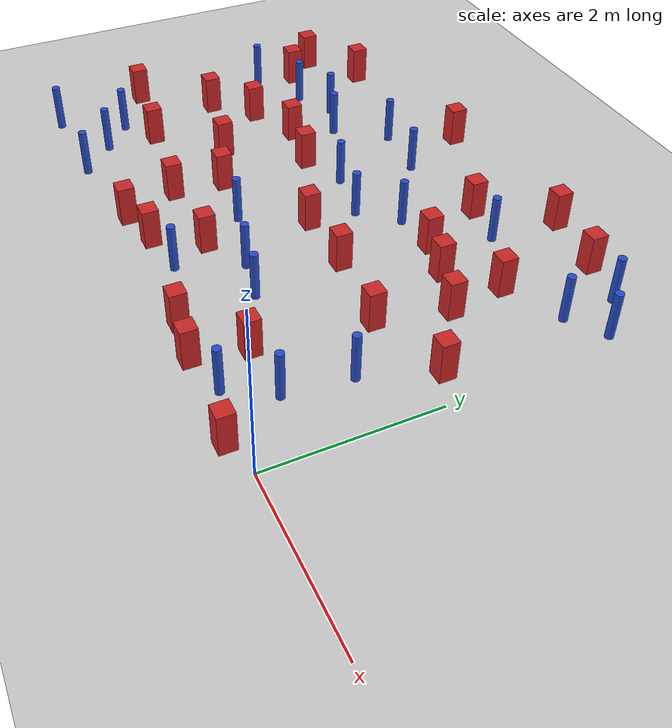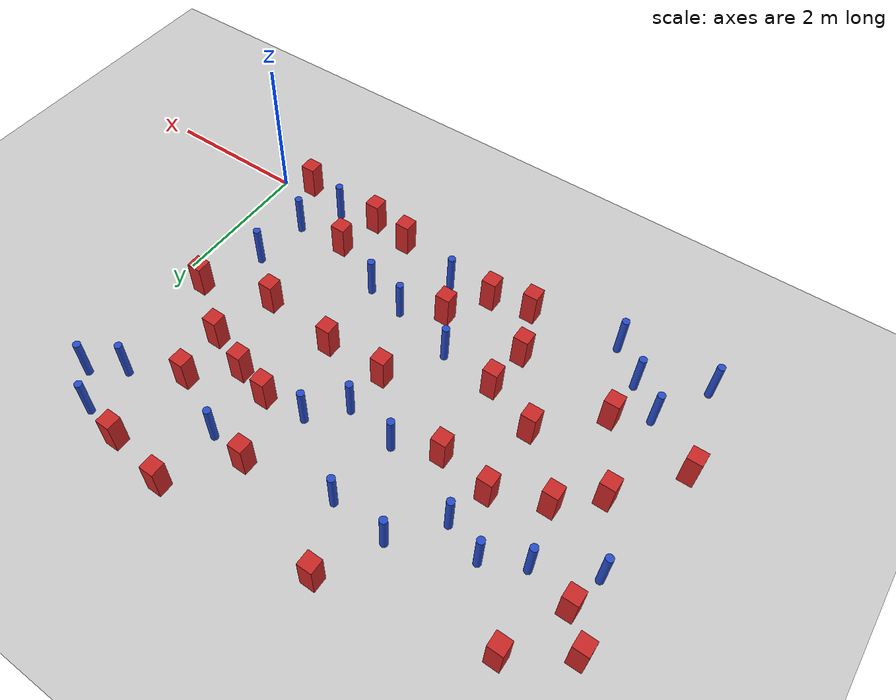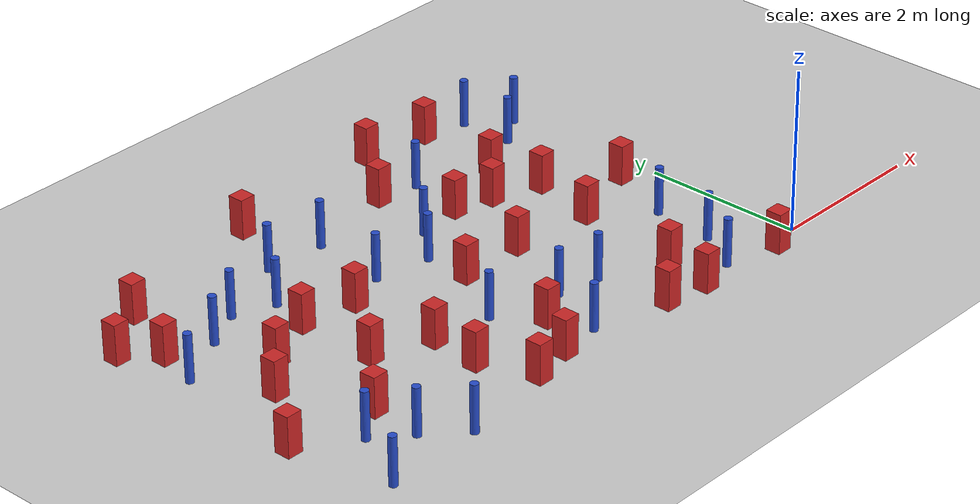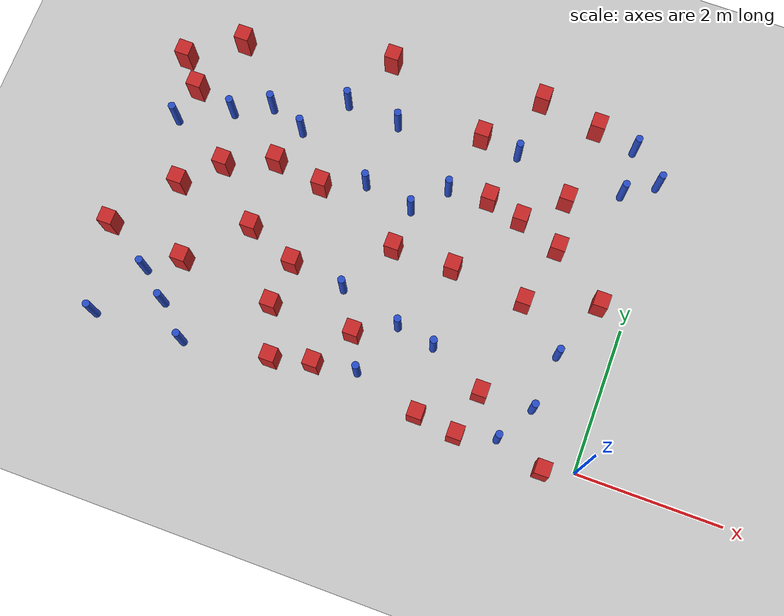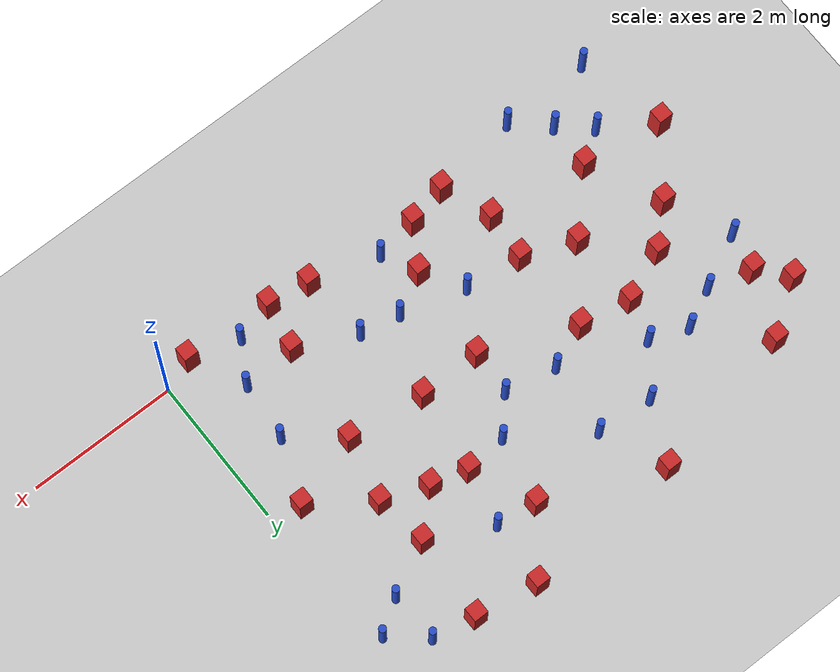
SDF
<sdf version="1.6">
 <world name="default">
  <model name="ground_plane">
   <static>1</static>
   <link name="link">
    <collision name="collision">
     <geometry><plane><normal>0 0 1</normal><size>100 100</size></plane></geometry>
     <surface><friction><ode><mu>100</mu><mu2>50</mu2></ode></friction></surface>
    </collision>
    <visual name="visual">
     <cast_shadows>0</cast_shadows>
     <geometry><plane><normal>0 0 1</normal><size>100 100</size></plane></geometry>
     <material>
      <ambient>1.0 1.0 1.0 1.0</ambient>
      <diffuse>0.8 0.8 0.8 1.0</diffuse>
      <specular>0.01 0.01 0.01 1.000000</specular>
     </material>
    </visual>
   </link>
  </model>
  <model name="square_post_obstacle1">
   <static>true</static>
   <pose>-4.15054993788 4.54803701752 -4.36207812815e-07 3.75137919937e-06 9.77721102514e-07 2.47381364184e-05</pose>
   <link name="link">
    <pose>0 0 0.25 0 -0 0</pose>
    <inertial>
     <mass>100</mass>
     <inertia>
      <ixx>0.166667</ixx>
      <ixy>0</ixy>
      <ixz>0</ixz>
      <iyy>0.166667</iyy>
      <iyz>0</iyz>
      <izz>0.166667</izz>
     </inertia>
    </inertial>
    <collision name="collision"><geometry><box><size>.2 .2 .5</size></box></geometry></collision>
    <visual name="visual">
     <geometry><box><size>.2 .2 .5</size></box></geometry>
     <material>
      <script><name>Gazebo/Red</name><uri>file://media/materials/scripts/gazebo.material</uri></script>
     </material>
    </visual>
   </link>
  </model>
  <model name="square_post_obstacle2">
   <static>true</static>
   <pose>-2.61837947253 3.90942713527 -4.36207812815e-07 3.75137919937e-06 9.77721102514e-07 2.47381364184e-05</pose>
   <link name="link">
    <pose>0 0 0.25 0 -0 0</pose>
    <inertial>
     <mass>100</mass>
     <inertia>
      <ixx>0.166667</ixx>
      <ixy>0</ixy>
      <ixz>0</ixz>
      <iyy>0.166667</iyy>
      <iyz>0</iyz>
      <izz>0.166667</izz>
     </inertia>
    </inertial>
    <collision name="collision"><geometry><box><size>.2 .2 .5</size></box></geometry></collision>
    <visual name="visual">
     <geometry><box><size>.2 .2 .5</size></box></geometry>
     <material>
      <script><name>Gazebo/Red</name><uri>file://media/materials/scripts/gazebo.material</uri></script>
     </material>
    </visual>
   </link>
  </model>
  <model name="pole_obstacle9">
   <static>true</static>
   <pose>-2.79973097755 1.02646332881 -3.09024884848e-07 -7.19054271902e-07 -2.11315075202e-07 -1.93935509288e-07</pose>
   <link name="link">
    <pose>0 0 0.3 0 -0 0</pose>
    <inertial>
     <mass>1</mass>
     <inertia><ixx>0.145833</ixx><ixy>0</ixy><ixz>0</ixz><iyy>0.145833</iyy><iyz>0</iyz><izz>0.125</izz></inertia>
    </inertial>
    <collision name="collision">
     <geometry><cylinder><radius>0.05</radius><length>.6</length></cylinder></geometry>
    </collision>
    <visual name="visual">
     <geometry><cylinder><radius>0.05</radius><length>.6</length></cylinder></geometry>
     <material>
      <script><name>Gazebo/Blue</name><uri>file://media/materials/scripts/gazebo.material</uri></script>
     </material>
    </visual>
   </link>
  </model>
  <model name="pole_obstacle11">
   <static>true</static>
   <pose>-4.52643800506 3.75983450144 -3.09024884793e-07 -7.19054271912e-07 -2.11315075144e-07 -1.93935509269e-07</pose>
   <link name="link">
    <pose>0 0 0.3 0 -0 0</pose>
    <inertial>
     <mass>1</mass>
     <inertia><ixx>0.145833</ixx><ixy>0</ixy><ixz>0</ixz><iyy>0.145833</iyy><iyz>0</iyz><izz>0.125</izz></inertia>
    </inertial>
    <collision name="collision">
     <geometry><cylinder><radius>0.05</radius><length>.6</length></cylinder></geometry>
    </collision>
    <visual name="visual">
     <geometry><cylinder><radius>0.05</radius><length>.6</length></cylinder></geometry>
     <material>
      <script><name>Gazebo/Blue</name><uri>file://media/materials/scripts/gazebo.material</uri></script>
     </material>
    </visual>
   </link>
  </model>
  <model name="pole_obstacle16">
   <static>true</static>
   <pose>-0.778239144255 0.585590767316 -3.09024884793e-07 -7.19054271912e-07 -2.11315075137e-07 -1.93935509266e-07</pose>
   <link name="link">
    <pose>0 0 0.3 0 -0 0</pose>
    <inertial>
     <mass>1</mass>
     <inertia><ixx>0.145833</ixx><ixy>0</ixy><ixz>0</ixz><iyy>0.145833</iyy><iyz>0</iyz><izz>0.125</izz></inertia>
    </inertial>
    <collision name="collision">
     <geometry><cylinder><radius>0.05</radius><length>.6</length></cylinder></geometry>
    </collision>
    <visual name="visual">
     <geometry><cylinder><radius>0.05</radius><length>.6</length></cylinder></geometry>
     <material>
      <script><name>Gazebo/Blue</name><uri>file://media/materials/scripts/gazebo.material</uri></script>
     </material>
    </visual>
   </link>
  </model>
  <model name="square_post_obstacle23">
   <static>true</static>
   <pose>-4.41929423397 1.35762161664 -4.36207812815e-07 3.75137919937e-06 9.77721102514e-07 2.47381364184e-05</pose>
   <link name="link">
    <pose>0 0 0.25 0 -0 0</pose>
    <inertial>
     <mass>100</mass>
     <inertia>
      <ixx>0.166667</ixx>
      <ixy>0</ixy>
      <ixz>0</ixz>
      <iyy>0.166667</iyy>
      <iyz>0</iyz>
      <izz>0.166667</izz>
     </inertia>
    </inertial>
    <collision name="collision"><geometry><box><size>.2 .2 .5</size></box></geometry></collision>
    <visual name="visual">
     <geometry><box><size>.2 .2 .5</size></box></geometry>
     <material>
      <script><name>Gazebo/Red</name><uri>file://media/materials/scripts/gazebo.material</uri></script>
     </material>
    </visual>
   </link>
  </model>
  <model name="square_post_obstacle26">
   <static>true</static>
   <pose>-5.80911963832 0.905373672479 -4.36207812815e-07 3.75137919937e-06 9.77721102514e-07 2.47381364184e-05</pose>
   <link name="link">
    <pose>0 0 0.25 0 -0 0</pose>
    <inertial>
     <mass>100</mass>
     <inertia>
      <ixx>0.166667</ixx>
      <ixy>0</ixy>
      <ixz>0</ixz>
      <iyy>0.166667</iyy>
      <iyz>0</iyz>
      <izz>0.166667</izz>
     </inertia>
    </inertial>
    <collision name="collision"><geometry><box><size>.2 .2 .5</size></box></geometry></collision>
    <visual name="visual">
     <geometry><box><size>.2 .2 .5</size></box></geometry>
     <material>
      <script><name>Gazebo/Red</name><uri>file://media/materials/scripts/gazebo.material</uri></script>
     </material>
    </visual>
   </link>
  </model>
  <model name="pole_obstacle19">
   <static>true</static>
   <pose>-3.09244429769 0.270575108553 -3.09024884793e-07 -7.19054271911e-07 -2.11315075163e-07 -1.93935509282e-07</pose>
   <link name="link">
    <pose>0 0 0.3 0 -0 0</pose>
    <inertial>
     <mass>1</mass>
     <inertia><ixx>0.145833</ixx><ixy>0</ixy><ixz>0</ixz><iyy>0.145833</iyy><iyz>0</iyz><izz>0.125</izz></inertia>
    </inertial>
    <collision name="collision">
     <geometry><cylinder><radius>0.05</radius><length>.6</length></cylinder></geometry>
    </collision>
    <visual name="visual">
     <geometry><cylinder><radius>0.05</radius><length>.6</length></cylinder></geometry>
     <material>
      <script><name>Gazebo/Blue</name><uri>file://media/materials/scripts/gazebo.material</uri></script>
     </material>
    </visual>
   </link>
  </model>
  <model name="pole_obstacle33">
   <static>true</static>
   <pose>-5.48912405878 3.35447288335 -3.09024884793e-07 -7.19054271912e-07 -2.11315075144e-07 -1.93935509269e-07</pose>
   <link name="link">
    <pose>0 0 0.3 0 -0 0</pose>
    <inertial>
     <mass>1</mass>
     <inertia><ixx>0.145833</ixx><ixy>0</ixy><ixz>0</ixz><iyy>0.145833</iyy><iyz>0</iyz><izz>0.125</izz></inertia>
    </inertial>
    <collision name="collision">
     <geometry><cylinder><radius>0.05</radius><length>.6</length></cylinder></geometry>
    </collision>
    <visual name="visual">
     <geometry><cylinder><radius>0.05</radius><length>.6</length></cylinder></geometry>
     <material>
      <script><name>Gazebo/Blue</name><uri>file://media/materials/scripts/gazebo.material</uri></script>
     </material>
    </visual>
   </link>
  </model>
  <model name="pole_obstacle37">
   <static>true</static>
   <pose>-0.603578876783 4.44447809757 -3.09024884793e-07 -7.19054271912e-07 -2.11315075129e-07 -1.93935509261e-07</pose>
   <link name="link">
    <pose>0 0 0.3 0 -0 0</pose>
    <inertial>
     <mass>1</mass>
     <inertia><ixx>0.145833</ixx><ixy>0</ixy><ixz>0</ixz><iyy>0.145833</iyy><iyz>0</iyz><izz>0.125</izz></inertia>
    </inertial>
    <collision name="collision">
     <geometry><cylinder><radius>0.05</radius><length>.6</length></cylinder></geometry>
    </collision>
    <visual name="visual">
     <geometry><cylinder><radius>0.05</radius><length>.6</length></cylinder></geometry>
     <material>
      <script><name>Gazebo/Blue</name><uri>file://media/materials/scripts/gazebo.material</uri></script>
     </material>
    </visual>
   </link>
  </model>
  <model name="square_post_obstacle40">
   <static>true</static>
   <pose>-5.1376311399 2.6227082914 -4.36207812815e-07 3.75137919937e-06 9.77721102514e-07 2.47381364184e-05</pose>
   <link name="link">
    <pose>0 0 0.25 0 -0 0</pose>
    <inertial>
     <mass>100</mass>
     <inertia>
      <ixx>0.166667</ixx>
      <ixy>0</ixy>
      <ixz>0</ixz>
      <iyy>0.166667</iyy>
      <iyz>0</iyz>
      <izz>0.166667</izz>
     </inertia>
    </inertial>
    <collision name="collision"><geometry><box><size>.2 .2 .5</size></box></geometry></collision>
    <visual name="visual">
     <geometry><box><size>.2 .2 .5</size></box></geometry>
     <material>
      <script><name>Gazebo/Red</name><uri>file://media/materials/scripts/gazebo.material</uri></script>
     </material>
    </visual>
   </link>
  </model>
  <model name="square_post_obstacle42">
   <static>true</static>
   <pose>-5.11307841669 1.63320434083 -4.36207812815e-07 3.75137919937e-06 9.77721102514e-07 2.47381364184e-05</pose>
   <link name="link">
    <pose>0 0 0.25 0 -0 0</pose>
    <inertial>
     <mass>100</mass>
     <inertia>
      <ixx>0.166667</ixx>
      <ixy>0</ixy>
      <ixz>0</ixz>
      <iyy>0.166667</iyy>
      <iyz>0</iyz>
      <izz>0.166667</izz>
     </inertia>
    </inertial>
    <collision name="collision"><geometry><box><size>.2 .2 .5</size></box></geometry></collision>
    <visual name="visual">
     <geometry><box><size>.2 .2 .5</size></box></geometry>
     <material>
      <script><name>Gazebo/Red</name><uri>file://media/materials/scripts/gazebo.material</uri></script>
     </material>
    </visual>
   </link>
  </model>
  <model name="square_post_obstacle47">
   <static>true</static>
   <pose>-6.26786505515 1.88761240958 -4.36207812815e-07 3.75137919937e-06 9.77721102514e-07 2.47381364184e-05</pose>
   <link name="link">
    <pose>0 0 0.25 0 -0 0</pose>
    <inertial>
     <mass>100</mass>
     <inertia>
      <ixx>0.166667</ixx>
      <ixy>0</ixy>
      <ixz>0</ixz>
      <iyy>0.166667</iyy>
      <iyz>0</iyz>
      <izz>0.166667</izz>
     </inertia>
    </inertial>
    <collision name="collision"><geometry><box><size>.2 .2 .5</size></box></geometry></collision>
    <visual name="visual">
     <geometry><box><size>.2 .2 .5</size></box></geometry>
     <material>
      <script><name>Gazebo/Red</name><uri>file://media/materials/scripts/gazebo.material</uri></script>
     </material>
    </visual>
   </link>
  </model>
  <model name="square_post_obstacle57">
   <static>true</static>
   <pose>-1.74925032782 2.95649413719 -4.36207812815e-07 3.75137919937e-06 9.77721102514e-07 2.47381364184e-05</pose>
   <link name="link">
    <pose>0 0 0.25 0 -0 0</pose>
    <inertial>
     <mass>100</mass>
     <inertia>
      <ixx>0.166667</ixx>
      <ixy>0</ixy>
      <ixz>0</ixz>
      <iyy>0.166667</iyy>
      <iyz>0</iyz>
      <izz>0.166667</izz>
     </inertia>
    </inertial>
    <collision name="collision"><geometry><box><size>.2 .2 .5</size></box></geometry></collision>
    <visual name="visual">
     <geometry><box><size>.2 .2 .5</size></box></geometry>
     <material>
      <script><name>Gazebo/Red</name><uri>file://media/materials/scripts/gazebo.material</uri></script>
     </material>
    </visual>
   </link>
  </model>
  <model name="pole_obstacle55">
   <static>true</static>
   <pose>-3.77449745545 3.69534994992 -3.09024884793e-07 -7.19054271912e-07 -2.11315075144e-07 -1.93935509271e-07</pose>
   <link name="link">
    <pose>0 0 0.3 0 -0 0</pose>
    <inertial>
     <mass>1</mass>
     <inertia><ixx>0.145833</ixx><ixy>0</ixy><ixz>0</ixz><iyy>0.145833</iyy><iyz>0</iyz><izz>0.125</izz></inertia>
    </inertial>
    <collision name="collision">
     <geometry><cylinder><radius>0.05</radius><length>.6</length></cylinder></geometry>
    </collision>
    <visual name="visual">
     <geometry><cylinder><radius>0.05</radius><length>.6</length></cylinder></geometry>
     <material>
      <script><name>Gazebo/Blue</name><uri>file://media/materials/scripts/gazebo.material</uri></script>
     </material>
    </visual>
   </link>
  </model>
  <model name="pole_obstacle56">
   <static>true</static>
   <pose>-2.07855391614 3.83825697546 -3.09024884793e-07 -7.19054271912e-07 -2.11315075144e-07 -1.93935509271e-07</pose>
   <link name="link">
    <pose>0 0 0.3 0 -0 0</pose>
    <inertial>
     <mass>1</mass>
     <inertia><ixx>0.145833</ixx><ixy>0</ixy><ixz>0</ixz><iyy>0.145833</iyy><iyz>0</iyz><izz>0.125</izz></inertia>
    </inertial>
    <collision name="collision">
     <geometry><cylinder><radius>0.05</radius><length>.6</length></cylinder></geometry>
    </collision>
    <visual name="visual">
     <geometry><cylinder><radius>0.05</radius><length>.6</length></cylinder></geometry>
     <material>
      <script><name>Gazebo/Blue</name><uri>file://media/materials/scripts/gazebo.material</uri></script>
     </material>
    </visual>
   </link>
  </model>
  <model name="pole_obstacle59">
   <static>true</static>
   <pose>-3.18893257986 2.60401056969 -3.09024884793e-07 -7.19054271912e-07 -2.11315075144e-07 -1.93935509271e-07</pose>
   <link name="link">
    <pose>0 0 0.3 0 -0 0</pose>
    <inertial>
     <mass>1</mass>
     <inertia><ixx>0.145833</ixx><ixy>0</ixy><ixz>0</ixz><iyy>0.145833</iyy><iyz>0</iyz><izz>0.125</izz></inertia>
    </inertial>
    <collision name="collision">
     <geometry><cylinder><radius>0.05</radius><length>.6</length></cylinder></geometry>
    </collision>
    <visual name="visual">
     <geometry><cylinder><radius>0.05</radius><length>.6</length></cylinder></geometry>
     <material>
      <script><name>Gazebo/Blue</name><uri>file://media/materials/scripts/gazebo.material</uri></script>
     </material>
    </visual>
   </link>
  </model>
  <model name="pole_obstacle63">
   <static>true</static>
   <pose>-2.26752311095 0.923633850804 -3.09024884793e-07 -7.19054271913e-07 -2.1131507512e-07 -1.93935509259e-07</pose>
   <link name="link">
    <pose>0 0 0.3 0 -0 0</pose>
    <inertial>
     <mass>1</mass>
     <inertia><ixx>0.145833</ixx><ixy>0</ixy><ixz>0</ixz><iyy>0.145833</iyy><iyz>0</iyz><izz>0.125</izz></inertia>
    </inertial>
    <collision name="collision">
     <geometry><cylinder><radius>0.05</radius><length>.6</length></cylinder></geometry>
    </collision>
    <visual name="visual">
     <geometry><cylinder><radius>0.05</radius><length>.6</length></cylinder></geometry>
     <material>
      <script><name>Gazebo/Blue</name><uri>file://media/materials/scripts/gazebo.material</uri></script>
     </material>
    </visual>
   </link>
  </model>
  <model name="pole_obstacle64">
   <static>true</static>
   <pose>-3.66201782387 1.26413737062 -3.09024884793e-07 -7.19054271911e-07 -2.11315075167e-07 -1.93935509283e-07</pose>
   <link name="link">
    <pose>0 0 0.3 0 -0 0</pose>
    <inertial>
     <mass>1</mass>
     <inertia><ixx>0.145833</ixx><ixy>0</ixy><ixz>0</ixz><iyy>0.145833</iyy><iyz>0</iyz><izz>0.125</izz></inertia>
    </inertial>
    <collision name="collision">
     <geometry><cylinder><radius>0.05</radius><length>.6</length></cylinder></geometry>
    </collision>
    <visual name="visual">
     <geometry><cylinder><radius>0.05</radius><length>.6</length></cylinder></geometry>
     <material>
      <script><name>Gazebo/Blue</name><uri>file://media/materials/scripts/gazebo.material</uri></script>
     </material>
    </visual>
   </link>
  </model>
  <model name="square_post_obstacle68">
   <static>true</static>
   <pose>-3.32068171618 0.736556954576 -4.36207812815e-07 3.75137919937e-06 9.77721102514e-07 2.47381364184e-05</pose>
   <link name="link">
    <pose>0 0 0.25 0 -0 0</pose>
    <inertial>
     <mass>100</mass>
     <inertia>
      <ixx>0.166667</ixx>
      <ixy>0</ixy>
      <ixz>0</ixz>
      <iyy>0.166667</iyy>
      <iyz>0</iyz>
      <izz>0.166667</izz>
     </inertia>
    </inertial>
    <collision name="collision"><geometry><box><size>.2 .2 .5</size></box></geometry></collision>
    <visual name="visual">
     <geometry><box><size>.2 .2 .5</size></box></geometry>
     <material>
      <script><name>Gazebo/Red</name><uri>file://media/materials/scripts/gazebo.material</uri></script>
     </material>
    </visual>
   </link>
  </model>
  <model name="pole_obstacle74">
   <static>true</static>
   <pose>-5.40592000885 -0.119625558949 -3.09024884793e-07 -7.19054271912e-07 -2.1131507513e-07 -1.93935509264e-07</pose>
   <link name="link">
    <pose>0 0 0.3 0 -0 0</pose>
    <inertial>
     <mass>1</mass>
     <inertia><ixx>0.145833</ixx><ixy>0</ixy><ixz>0</ixz><iyy>0.145833</iyy><iyz>0</iyz><izz>0.125</izz></inertia>
    </inertial>
    <collision name="collision">
     <geometry><cylinder><radius>0.05</radius><length>.6</length></cylinder></geometry>
    </collision>
    <visual name="visual">
     <geometry><cylinder><radius>0.05</radius><length>.6</length></cylinder></geometry>
     <material>
      <script><name>Gazebo/Blue</name><uri>file://media/materials/scripts/gazebo.material</uri></script>
     </material>
    </visual>
   </link>
  </model>
  <model name="square_post_obstacle78">
   <static>true</static>
   <pose>-2.17620515489 0.00720819154603 -4.36207812815e-07 3.75137919937e-06 9.77721102514e-07 2.47381364184e-05</pose>
   <link name="link">
    <pose>0 0 0.25 0 -0 0</pose>
    <inertial>
     <mass>100</mass>
     <inertia>
      <ixx>0.166667</ixx>
      <ixy>0</ixy>
      <ixz>0</ixz>
      <iyy>0.166667</iyy>
      <iyz>0</iyz>
      <izz>0.166667</izz>
     </inertia>
    </inertial>
    <collision name="collision"><geometry><box><size>.2 .2 .5</size></box></geometry></collision>
    <visual name="visual">
     <geometry><box><size>.2 .2 .5</size></box></geometry>
     <material>
      <script><name>Gazebo/Red</name><uri>file://media/materials/scripts/gazebo.material</uri></script>
     </material>
    </visual>
   </link>
  </model>
  <model name="square_post_obstacle87">
   <static>true</static>
   <pose>-6.88455234037 3.63516094425 -4.36207812815e-07 3.75137919937e-06 9.77721102514e-07 2.47381364184e-05</pose>
   <link name="link">
    <pose>0 0 0.25 0 -0 0</pose>
    <inertial>
     <mass>100</mass>
     <inertia>
      <ixx>0.166667</ixx>
      <ixy>0</ixy>
      <ixz>0</ixz>
      <iyy>0.166667</iyy>
      <iyz>0</iyz>
      <izz>0.166667</izz>
     </inertia>
    </inertial>
    <collision name="collision"><geometry><box><size>.2 .2 .5</size></box></geometry></collision>
    <visual name="visual">
     <geometry><box><size>.2 .2 .5</size></box></geometry>
     <material>
      <script><name>Gazebo/Red</name><uri>file://media/materials/scripts/gazebo.material</uri></script>
     </material>
    </visual>
   </link>
  </model>
  <model name="pole_obstacle102">
   <static>true</static>
   <pose>-5.9819327534 3.10298066076 -3.09024884793e-07 -7.19054271912e-07 -2.11315075144e-07 -1.93935509269e-07</pose>
   <link name="link">
    <pose>0 0 0.3 0 -0 0</pose>
    <inertial>
     <mass>1</mass>
     <inertia><ixx>0.145833</ixx><ixy>0</ixy><ixz>0</ixz><iyy>0.145833</iyy><iyz>0</iyz><izz>0.125</izz></inertia>
    </inertial>
    <collision name="collision">
     <geometry><cylinder><radius>0.05</radius><length>.6</length></cylinder></geometry>
    </collision>
    <visual name="visual">
     <geometry><cylinder><radius>0.05</radius><length>.6</length></cylinder></geometry>
     <material>
      <script><name>Gazebo/Blue</name><uri>file://media/materials/scripts/gazebo.material</uri></script>
     </material>
    </visual>
   </link>
  </model>
  <model name="square_post_obstacle91">
   <static>true</static>
   <pose>-1.15033159529 2.73690300968 -4.36207812815e-07 3.75137919937e-06 9.77721102514e-07 2.47381364184e-05</pose>
   <link name="link">
    <pose>0 0 0.25 0 -0 0</pose>
    <inertial>
     <mass>100</mass>
     <inertia>
      <ixx>0.166667</ixx>
      <ixy>0</ixy>
      <ixz>0</ixz>
      <iyy>0.166667</iyy>
      <iyz>0</iyz>
      <izz>0.166667</izz>
     </inertia>
    </inertial>
    <collision name="collision"><geometry><box><size>.2 .2 .5</size></box></geometry></collision>
    <visual name="visual">
     <geometry><box><size>.2 .2 .5</size></box></geometry>
     <material>
      <script><name>Gazebo/Red</name><uri>file://media/materials/scripts/gazebo.material</uri></script>
     </material>
    </visual>
   </link>
  </model>
  <model name="pole_obstacle105">
   <static>true</static>
   <pose>-0.697918168545 1.36570797912 -3.09024884793e-07 -7.19054271912e-07 -2.11315075135e-07 -1.93935509266e-07</pose>
   <link name="link">
    <pose>0 0 0.3 0 -0 0</pose>
    <inertial>
     <mass>1</mass>
     <inertia><ixx>0.145833</ixx><ixy>0</ixy><ixz>0</ixz><iyy>0.145833</iyy><iyz>0</iyz><izz>0.125</izz></inertia>
    </inertial>
    <collision name="collision">
     <geometry><cylinder><radius>0.05</radius><length>.6</length></cylinder></geometry>
    </collision>
    <visual name="visual">
     <geometry><cylinder><radius>0.05</radius><length>.6</length></cylinder></geometry>
     <material>
      <script><name>Gazebo/Blue</name><uri>file://media/materials/scripts/gazebo.material</uri></script>
     </material>
    </visual>
   </link>
  </model>
  <model name="square_post_obstacle101">
   <static>true</static>
   <pose>-3.21986736965 2.00692156604 -4.36207812815e-07 3.75137919937e-06 9.77721102514e-07 2.47381364184e-05</pose>
   <link name="link">
    <pose>0 0 0.25 0 -0 0</pose>
    <inertial>
     <mass>100</mass>
     <inertia>
      <ixx>0.166667</ixx>
      <ixy>0</ixy>
      <ixz>0</ixz>
      <iyy>0.166667</iyy>
      <iyz>0</iyz>
      <izz>0.166667</izz>
     </inertia>
    </inertial>
    <collision name="collision"><geometry><box><size>.2 .2 .5</size></box></geometry></collision>
    <visual name="visual">
     <geometry><box><size>.2 .2 .5</size></box></geometry>
     <material>
      <script><name>Gazebo/Red</name><uri>file://media/materials/scripts/gazebo.material</uri></script>
     </material>
    </visual>
   </link>
  </model>
  <model name="square_post_obstacle103">
   <static>true</static>
   <pose>-0.388064512919 2.19094918906 -4.36207812815e-07 3.75137919937e-06 9.77721102514e-07 2.47381364184e-05</pose>
   <link name="link">
    <pose>0 0 0.25 0 -0 0</pose>
    <inertial>
     <mass>100</mass>
     <inertia>
      <ixx>0.166667</ixx>
      <ixy>0</ixy>
      <ixz>0</ixz>
      <iyy>0.166667</iyy>
      <iyz>0</iyz>
      <izz>0.166667</izz>
     </inertia>
    </inertial>
    <collision name="collision"><geometry><box><size>.2 .2 .5</size></box></geometry></collision>
    <visual name="visual">
     <geometry><box><size>.2 .2 .5</size></box></geometry>
     <material>
      <script><name>Gazebo/Red</name><uri>file://media/materials/scripts/gazebo.material</uri></script>
     </material>
    </visual>
   </link>
  </model>
  <model name="pole_obstacle141">
   <static>true</static>
   <pose>-3.88316653694 2.73471204003 -3.09024884793e-07 -7.19054271912e-07 -2.11315075144e-07 -1.93935509271e-07</pose>
   <link name="link">
    <pose>0 0 0.3 0 -0 0</pose>
    <inertial>
     <mass>1</mass>
     <inertia><ixx>0.145833</ixx><ixy>0</ixy><ixz>0</ixz><iyy>0.145833</iyy><iyz>0</iyz><izz>0.125</izz></inertia>
    </inertial>
    <collision name="collision">
     <geometry><cylinder><radius>0.05</radius><length>.6</length></cylinder></geometry>
    </collision>
    <visual name="visual">
     <geometry><cylinder><radius>0.05</radius><length>.6</length></cylinder></geometry>
     <material>
      <script><name>Gazebo/Blue</name><uri>file://media/materials/scripts/gazebo.material</uri></script>
     </material>
    </visual>
   </link>
  </model>
  <model name="square_post_obstacle126">
   <static>true</static>
   <pose>-6.1998735125 4.11619700479 -4.36207812815e-07 3.75137919937e-06 9.77721102514e-07 2.47381364184e-05</pose>
   <link name="link">
    <pose>0 0 0.25 0 -0 0</pose>
    <inertial>
     <mass>100</mass>
     <inertia>
      <ixx>0.166667</ixx>
      <ixy>0</ixy>
      <ixz>0</ixz>
      <iyy>0.166667</iyy>
      <iyz>0</iyz>
      <izz>0.166667</izz>
     </inertia>
    </inertial>
    <collision name="collision"><geometry><box><size>.2 .2 .5</size></box></geometry></collision>
    <visual name="visual">
     <geometry><box><size>.2 .2 .5</size></box></geometry>
     <material>
      <script><name>Gazebo/Red</name><uri>file://media/materials/scripts/gazebo.material</uri></script>
     </material>
    </visual>
   </link>
  </model>
  <model name="square_post_obstacle131">
   <static>true</static>
   <pose>-1.1764338642 4.55241362865 -4.36207812815e-07 3.75137919937e-06 9.77721102514e-07 2.47381364184e-05</pose>
   <link name="link">
    <pose>0 0 0.25 0 -0 0</pose>
    <inertial>
     <mass>100</mass>
     <inertia>
      <ixx>0.166667</ixx>
      <ixy>0</ixy>
      <ixz>0</ixz>
      <iyy>0.166667</iyy>
      <iyz>0</iyz>
      <izz>0.166667</izz>
     </inertia>
    </inertial>
    <collision name="collision"><geometry><box><size>.2 .2 .5</size></box></geometry></collision>
    <visual name="visual">
     <geometry><box><size>.2 .2 .5</size></box></geometry>
     <material>
      <script><name>Gazebo/Red</name><uri>file://media/materials/scripts/gazebo.material</uri></script>
     </material>
    </visual>
   </link>
  </model>
  <model name="pole_obstacle143">
   <static>true</static>
   <pose>-6.67181231893 2.75067694859 -3.09024884793e-07 -7.19054271912e-07 -2.11315075144e-07 -1.93935509269e-07</pose>
   <link name="link">
    <pose>0 0 0.3 0 -0 0</pose>
    <inertial>
     <mass>1</mass>
     <inertia><ixx>0.145833</ixx><ixy>0</ixy><ixz>0</ixz><iyy>0.145833</iyy><iyz>0</iyz><izz>0.125</izz></inertia>
    </inertial>
    <collision name="collision">
     <geometry><cylinder><radius>0.05</radius><length>.6</length></cylinder></geometry>
    </collision>
    <visual name="visual">
     <geometry><cylinder><radius>0.05</radius><length>.6</length></cylinder></geometry>
     <material>
      <script><name>Gazebo/Blue</name><uri>file://media/materials/scripts/gazebo.material</uri></script>
     </material>
    </visual>
   </link>
  </model>
  <model name="square_post_obstacle135">
   <static>true</static>
   <pose>-1.25261616933 3.43136456237 -4.36207812815e-07 3.75137919937e-06 9.77721102514e-07 2.47381364184e-05</pose>
   <link name="link">
    <pose>0 0 0.25 0 -0 0</pose>
    <inertial>
     <mass>100</mass>
     <inertia>
      <ixx>0.166667</ixx>
      <ixy>0</ixy>
      <ixz>0</ixz>
      <iyy>0.166667</iyy>
      <iyz>0</iyz>
      <izz>0.166667</izz>
     </inertia>
    </inertial>
    <collision name="collision"><geometry><box><size>.2 .2 .5</size></box></geometry></collision>
    <visual name="visual">
     <geometry><box><size>.2 .2 .5</size></box></geometry>
     <material>
      <script><name>Gazebo/Red</name><uri>file://media/materials/scripts/gazebo.material</uri></script>
     </material>
    </visual>
   </link>
  </model>
  <model name="pole_obstacle149">
   <static>true</static>
   <pose>-2.80357833618 3.03224607268 -3.09024884793e-07 -7.19054271912e-07 -2.11315075144e-07 -1.93935509271e-07</pose>
   <link name="link">
    <pose>0 0 0.3 0 -0 0</pose>
    <inertial>
     <mass>1</mass>
     <inertia><ixx>0.145833</ixx><ixy>0</ixy><ixz>0</ixz><iyy>0.145833</iyy><iyz>0</iyz><izz>0.125</izz></inertia>
    </inertial>
    <collision name="collision">
     <geometry><cylinder><radius>0.05</radius><length>.6</length></cylinder></geometry>
    </collision>
    <visual name="visual">
     <geometry><cylinder><radius>0.05</radius><length>.6</length></cylinder></geometry>
     <material>
      <script><name>Gazebo/Blue</name><uri>file://media/materials/scripts/gazebo.material</uri></script>
     </material>
    </visual>
   </link>
  </model>
  <model name="pole_obstacle150">
   <static>true</static>
   <pose>-4.98735543788 3.16585521658 -3.09024884793e-07 -7.19054271912e-07 -2.11315075144e-07 -1.93935509269e-07</pose>
   <link name="link">
    <pose>0 0 0.3 0 -0 0</pose>
    <inertial>
     <mass>1</mass>
     <inertia><ixx>0.145833</ixx><ixy>0</ixy><ixz>0</ixz><iyy>0.145833</iyy><iyz>0</iyz><izz>0.125</izz></inertia>
    </inertial>
    <collision name="collision">
     <geometry><cylinder><radius>0.05</radius><length>.6</length></cylinder></geometry>
    </collision>
    <visual name="visual">
     <geometry><cylinder><radius>0.05</radius><length>.6</length></cylinder></geometry>
     <material>
      <script><name>Gazebo/Blue</name><uri>file://media/materials/scripts/gazebo.material</uri></script>
     </material>
    </visual>
   </link>
  </model>
  <model name="square_post_obstacle145">
   <static>true</static>
   <pose>-1.34498752411 1.88944757641 -4.36207812815e-07 3.75137919937e-06 9.77721102514e-07 2.47381364184e-05</pose>
   <link name="link">
    <pose>0 0 0.25 0 -0 0</pose>
    <inertial>
     <mass>100</mass>
     <inertia>
      <ixx>0.166667</ixx>
      <ixy>0</ixy>
      <ixz>0</ixz>
      <iyy>0.166667</iyy>
      <iyz>0</iyz>
      <izz>0.166667</izz>
     </inertia>
    </inertial>
    <collision name="collision"><geometry><box><size>.2 .2 .5</size></box></geometry></collision>
    <visual name="visual">
     <geometry><box><size>.2 .2 .5</size></box></geometry>
     <material>
      <script><name>Gazebo/Red</name><uri>file://media/materials/scripts/gazebo.material</uri></script>
     </material>
    </visual>
   </link>
  </model>
  <model name="square_post_obstacle146">
   <static>true</static>
   <pose>-4.44554683174 2.50556556514 -4.36207812815e-07 3.75137919937e-06 9.77721102514e-07 2.47381364184e-05</pose>
   <link name="link">
    <pose>0 0 0.25 0 -0 0</pose>
    <inertial>
     <mass>100</mass>
     <inertia>
      <ixx>0.166667</ixx>
      <ixy>0</ixy>
      <ixz>0</ixz>
      <iyy>0.166667</iyy>
      <iyz>0</iyz>
      <izz>0.166667</izz>
     </inertia>
    </inertial>
    <collision name="collision"><geometry><box><size>.2 .2 .5</size></box></geometry></collision>
    <visual name="visual">
     <geometry><box><size>.2 .2 .5</size></box></geometry>
     <material>
      <script><name>Gazebo/Red</name><uri>file://media/materials/scripts/gazebo.material</uri></script>
     </material>
    </visual>
   </link>
  </model>
  <model name="square_post_obstacle151">
   <static>true</static>
   <pose>-2.01171037866 4.6887156121 -4.36207812815e-07 3.75137919937e-06 9.77721102514e-07 2.47381364184e-05</pose>
   <link name="link">
    <pose>0 0 0.25 0 -0 0</pose>
    <inertial>
     <mass>100</mass>
     <inertia>
      <ixx>0.166667</ixx>
      <ixy>0</ixy>
      <ixz>0</ixz>
      <iyy>0.166667</iyy>
      <iyz>0</iyz>
      <izz>0.166667</izz>
     </inertia>
    </inertial>
    <collision name="collision"><geometry><box><size>.2 .2 .5</size></box></geometry></collision>
    <visual name="visual">
     <geometry><box><size>.2 .2 .5</size></box></geometry>
     <material>
      <script><name>Gazebo/Red</name><uri>file://media/materials/scripts/gazebo.material</uri></script>
     </material>
    </visual>
   </link>
  </model>
  <model name="square_post_obstacle152">
   <static>true</static>
   <pose>-2.38173016512 2.00944371093 -4.36207812815e-07 3.75137919937e-06 9.77721102514e-07 2.47381364184e-05</pose>
   <link name="link">
    <pose>0 0 0.25 0 -0 0</pose>
    <inertial>
     <mass>100</mass>
     <inertia>
      <ixx>0.166667</ixx>
      <ixy>0</ixy>
      <ixz>0</ixz>
      <iyy>0.166667</iyy>
      <iyz>0</iyz>
      <izz>0.166667</izz>
     </inertia>
    </inertial>
    <collision name="collision"><geometry><box><size>.2 .2 .5</size></box></geometry></collision>
    <visual name="visual">
     <geometry><box><size>.2 .2 .5</size></box></geometry>
     <material>
      <script><name>Gazebo/Red</name><uri>file://media/materials/scripts/gazebo.material</uri></script>
     </material>
    </visual>
   </link>
  </model>
  <model name="pole_obstacle165">
   <static>true</static>
   <pose>-5.83642466636 0.281665199174 -3.09024884793e-07 -7.19054271912e-07 -2.11315075135e-07 -1.93935509265e-07</pose>
   <link name="link">
    <pose>0 0 0.3 0 -0 0</pose>
    <inertial>
     <mass>1</mass>
     <inertia><ixx>0.145833</ixx><ixy>0</ixy><ixz>0</ixz><iyy>0.145833</iyy><iyz>0</iyz><izz>0.125</izz></inertia>
    </inertial>
    <collision name="collision">
     <geometry><cylinder><radius>0.05</radius><length>.6</length></cylinder></geometry>
    </collision>
    <visual name="visual">
     <geometry><cylinder><radius>0.05</radius><length>.6</length></cylinder></geometry>
     <material>
      <script><name>Gazebo/Blue</name><uri>file://media/materials/scripts/gazebo.material</uri></script>
     </material>
    </visual>
   </link>
  </model>
  <model name="pole_obstacle167">
   <static>true</static>
   <pose>-0.154795861224 4.05834478072 -3.09024884793e-07 -7.19054271912e-07 -2.11315075133e-07 -1.93935509265e-07</pose>
   <link name="link">
    <pose>0 0 0.3 0 -0 0</pose>
    <inertial>
     <mass>1</mass>
     <inertia><ixx>0.145833</ixx><ixy>0</ixy><ixz>0</ixz><iyy>0.145833</iyy><iyz>0</iyz><izz>0.125</izz></inertia>
    </inertial>
    <collision name="collision">
     <geometry><cylinder><radius>0.05</radius><length>.6</length></cylinder></geometry>
    </collision>
    <visual name="visual">
     <geometry><cylinder><radius>0.05</radius><length>.6</length></cylinder></geometry>
     <material>
      <script><name>Gazebo/Blue</name><uri>file://media/materials/scripts/gazebo.material</uri></script>
     </material>
    </visual>
   </link>
  </model>
  <model name="square_post_obstacle161">
   <static>true</static>
   <pose>-2.23817787828 3.0858264464 -4.36207812815e-07 3.75137919937e-06 9.77721102514e-07 2.47381364184e-05</pose>
   <link name="link">
    <pose>0 0 0.25 0 -0 0</pose>
    <inertial>
     <mass>100</mass>
     <inertia>
      <ixx>0.166667</ixx>
      <ixy>0</ixy>
      <ixz>0</ixz>
      <iyy>0.166667</iyy>
      <iyz>0</iyz>
      <izz>0.166667</izz>
     </inertia>
    </inertial>
    <collision name="collision"><geometry><box><size>.2 .2 .5</size></box></geometry></collision>
    <visual name="visual">
     <geometry><box><size>.2 .2 .5</size></box></geometry>
     <material>
      <script><name>Gazebo/Red</name><uri>file://media/materials/scripts/gazebo.material</uri></script>
     </material>
    </visual>
   </link>
  </model>
  <model name="pole_obstacle173">
   <static>true</static>
   <pose>-0.574574198561 3.77761352027 -3.09024884793e-07 -7.19054271912e-07 -2.11315075129e-07 -1.93935509263e-07</pose>
   <link name="link">
    <pose>0 0 0.3 0 -0 0</pose>
    <inertial>
     <mass>1</mass>
     <inertia><ixx>0.145833</ixx><ixy>0</ixy><ixz>0</ixz><iyy>0.145833</iyy><iyz>0</iyz><izz>0.125</izz></inertia>
    </inertial>
    <collision name="collision">
     <geometry><cylinder><radius>0.05</radius><length>.6</length></cylinder></geometry>
    </collision>
    <visual name="visual">
     <geometry><cylinder><radius>0.05</radius><length>.6</length></cylinder></geometry>
     <material>
      <script><name>Gazebo/Blue</name><uri>file://media/materials/scripts/gazebo.material</uri></script>
     </material>
    </visual>
   </link>
  </model>
  <model name="pole_obstacle176">
   <static>true</static>
   <pose>-6.64558365422 -0.157516162806 -3.09024884793e-07 -7.19054271912e-07 -2.11315075119e-07 -1.93935509258e-07</pose>
   <link name="link">
    <pose>0 0 0.3 0 -0 0</pose>
    <inertial>
     <mass>1</mass>
     <inertia><ixx>0.145833</ixx><ixy>0</ixy><ixz>0</ixz><iyy>0.145833</iyy><iyz>0</iyz><izz>0.125</izz></inertia>
    </inertial>
    <collision name="collision">
     <geometry><cylinder><radius>0.05</radius><length>.6</length></cylinder></geometry>
    </collision>
    <visual name="visual">
     <geometry><cylinder><radius>0.05</radius><length>.6</length></cylinder></geometry>
     <material>
      <script><name>Gazebo/Blue</name><uri>file://media/materials/scripts/gazebo.material</uri></script>
     </material>
    </visual>
   </link>
  </model>
  <model name="square_post_obstacle171">
   <static>true</static>
   <pose>-4.47016390974 0.726145449734 -4.36207812815e-07 3.75137919937e-06 9.77721102514e-07 2.47381364184e-05</pose>
   <link name="link">
    <pose>0 0 0.25 0 -0 0</pose>
    <inertial>
     <mass>100</mass>
     <inertia>
      <ixx>0.166667</ixx>
      <ixy>0</ixy>
      <ixz>0</ixz>
      <iyy>0.166667</iyy>
      <iyz>0</iyz>
      <izz>0.166667</izz>
     </inertia>
    </inertial>
    <collision name="collision"><geometry><box><size>.2 .2 .5</size></box></geometry></collision>
    <visual name="visual">
     <geometry><box><size>.2 .2 .5</size></box></geometry>
     <material>
      <script><name>Gazebo/Red</name><uri>file://media/materials/scripts/gazebo.material</uri></script>
     </material>
    </visual>
   </link>
  </model>
  <model name="square_post_obstacle177">
   <static>true</static>
   <pose>-4.21357736067 0.0565569949442 -4.36207812815e-07 3.75137919937e-06 9.77721102514e-07 2.47381364184e-05</pose>
   <link name="link">
    <pose>0 0 0.25 0 -0 0</pose>
    <inertial>
     <mass>100</mass>
     <inertia>
      <ixx>0.166667</ixx>
      <ixy>0</ixy>
      <ixz>0</ixz>
      <iyy>0.166667</iyy>
      <iyz>0</iyz>
      <izz>0.166667</izz>
     </inertia>
    </inertial>
    <collision name="collision"><geometry><box><size>.2 .2 .5</size></box></geometry></collision>
    <visual name="visual">
     <geometry><box><size>.2 .2 .5</size></box></geometry>
     <material>
      <script><name>Gazebo/Red</name><uri>file://media/materials/scripts/gazebo.material</uri></script>
     </material>
    </visual>
   </link>
  </model>
  <model name="square_post_obstacle183">
   <static>true</static>
   <pose>-0.423504273983 -0.130292938364 -4.36207812815e-07 3.75137919937e-06 9.77721102514e-07 2.47381364184e-05</pose>
   <link name="link">
    <pose>0 0 0.25 0 -0 0</pose>
    <inertial>
     <mass>100</mass>
     <inertia>
      <ixx>0.166667</ixx>
      <ixy>0</ixy>
      <ixz>0</ixz>
      <iyy>0.166667</iyy>
      <iyz>0</iyz>
      <izz>0.166667</izz>
     </inertia>
    </inertial>
    <collision name="collision"><geometry><box><size>.2 .2 .5</size></box></geometry></collision>
    <visual name="visual">
     <geometry><box><size>.2 .2 .5</size></box></geometry>
     <material>
      <script><name>Gazebo/Red</name><uri>file://media/materials/scripts/gazebo.material</uri></script>
     </material>
    </visual>
   </link>
  </model>
  <model name="square_post_obstacle185">
   <static>true</static>
   <pose>-5.80372093767 2.3397871454 -4.36207812815e-07 3.75137919937e-06 9.77721102514e-07 2.47381364184e-05</pose>
   <link name="link">
    <pose>0 0 0.25 0 -0 0</pose>
    <inertial>
     <mass>100</mass>
     <inertia>
      <ixx>0.166667</ixx>
      <ixy>0</ixy>
      <ixz>0</ixz>
      <iyy>0.166667</iyy>
      <iyz>0</iyz>
      <izz>0.166667</izz>
     </inertia>
    </inertial>
    <collision name="collision"><geometry><box><size>.2 .2 .5</size></box></geometry></collision>
    <visual name="visual">
     <geometry><box><size>.2 .2 .5</size></box></geometry>
     <material>
      <script><name>Gazebo/Red</name><uri>file://media/materials/scripts/gazebo.material</uri></script>
     </material>
    </visual>
   </link>
  </model>
  <model name="square_post_obstacle190">
   <static>true</static>
   <pose>-6.5564383796 3.2502085286 -4.36207812815e-07 3.75137919937e-06 9.77721102514e-07 2.47381364184e-05</pose>
   <link name="link">
    <pose>0 0 0.25 0 -0 0</pose>
    <inertial>
     <mass>100</mass>
     <inertia>
      <ixx>0.166667</ixx>
      <ixy>0</ixy>
      <ixz>0</ixz>
      <iyy>0.166667</iyy>
      <iyz>0</iyz>
      <izz>0.166667</izz>
     </inertia>
    </inertial>
    <collision name="collision"><geometry><box><size>.2 .2 .5</size></box></geometry></collision>
    <visual name="visual">
     <geometry><box><size>.2 .2 .5</size></box></geometry>
     <material>
      <script><name>Gazebo/Red</name><uri>file://media/materials/scripts/gazebo.material</uri></script>
     </material>
    </visual>
   </link>
  </model>
  <model name="square_post_obstacle193">
   <static>true</static>
   <pose>-6.91343668793 1.04736831187 -4.36207812815e-07 3.75137919937e-06 9.77721102514e-07 2.47381364184e-05</pose>
   <link name="link">
    <pose>0 0 0.25 0 -0 0</pose>
    <inertial>
     <mass>100</mass>
     <inertia>
      <ixx>0.166667</ixx>
      <ixy>0</ixy>
      <ixz>0</ixz>
      <iyy>0.166667</iyy>
      <iyz>0</iyz>
      <izz>0.166667</izz>
     </inertia>
    </inertial>
    <collision name="collision"><geometry><box><size>.2 .2 .5</size></box></geometry></collision>
    <visual name="visual">
     <geometry><box><size>.2 .2 .5</size></box></geometry>
     <material>
      <script><name>Gazebo/Red</name><uri>file://media/materials/scripts/gazebo.material</uri></script>
     </material>
    </visual>
   </link>
  </model>
  <model name="square_post_obstacle196">
   <static>true</static>
   <pose>-1.61315896829 -0.0698220526708 -4.36207812815e-07 3.75137919937e-06 9.77721102514e-07 2.47381364184e-05</pose>
   <link name="link">
    <pose>0 0 0.25 0 -0 0</pose>
    <inertial>
     <mass>100</mass>
     <inertia>
      <ixx>0.166667</ixx>
      <ixy>0</ixy>
      <ixz>0</ixz>
      <iyy>0.166667</iyy>
      <iyz>0</iyz>
      <izz>0.166667</izz>
     </inertia>
    </inertial>
    <collision name="collision"><geometry><box><size>.2 .2 .5</size></box></geometry></collision>
    <visual name="visual">
     <geometry><box><size>.2 .2 .5</size></box></geometry>
     <material>
      <script><name>Gazebo/Red</name><uri>file://media/materials/scripts/gazebo.material</uri></script>
     </material>
    </visual>
   </link>
  </model>
  <model name="square_post_obstacle197">
   <static>true</static>
   <pose>-3.66697856026 0.178415485254 -4.36207812815e-07 3.75137919937e-06 9.77721102514e-07 2.47381364184e-05</pose>
   <link name="link">
    <pose>0 0 0.25 0 -0 0</pose>
    <inertial>
     <mass>100</mass>
     <inertia>
      <ixx>0.166667</ixx>
      <ixy>0</ixy>
      <ixz>0</ixz>
      <iyy>0.166667</iyy>
      <iyz>0</iyz>
      <izz>0.166667</izz>
     </inertia>
    </inertial>
    <collision name="collision"><geometry><box><size>.2 .2 .5</size></box></geometry></collision>
    <visual name="visual">
     <geometry><box><size>.2 .2 .5</size></box></geometry>
     <material>
      <script><name>Gazebo/Red</name><uri>file://media/materials/scripts/gazebo.material</uri></script>
     </material>
    </visual>
   </link>
  </model>
  <model name="square_post_obstacle198">
   <static>true</static>
   <pose>-1.48936282928 0.553469045821 -4.36207812815e-07 3.75137919937e-06 9.77721102514e-07 2.47381364184e-05</pose>
   <link name="link">
    <pose>0 0 0.25 0 -0 0</pose>
    <inertial>
     <mass>100</mass>
     <inertia>
      <ixx>0.166667</ixx>
      <ixy>0</ixy>
      <ixz>0</ixz>
      <iyy>0.166667</iyy>
      <iyz>0</iyz>
      <izz>0.166667</izz>
     </inertia>
    </inertial>
    <collision name="collision"><geometry><box><size>.2 .2 .5</size></box></geometry></collision>
    <visual name="visual">
     <geometry><box><size>.2 .2 .5</size></box></geometry>
     <material>
      <script><name>Gazebo/Red</name><uri>file://media/materials/scripts/gazebo.material</uri></script>
     </material>
    </visual>
   </link>
  </model>
  <model name="pole_obstacle218">
   <static>true</static>
   <pose>-1.08374830035 0.0644879598772 -3.09024884793e-07 -7.19054271912e-07 -2.11315075131e-07 -1.93935509263e-07</pose>
   <link name="link">
    <pose>0 0 0.3 0 -0 0</pose>
    <inertial>
     <mass>1</mass>
     <inertia><ixx>0.145833</ixx><ixy>0</ixy><ixz>0</ixz><iyy>0.145833</iyy><iyz>0</iyz><izz>0.125</izz></inertia>
    </inertial>
    <collision name="collision">
     <geometry><cylinder><radius>0.05</radius><length>.6</length></cylinder></geometry>
    </collision>
    <visual name="visual">
     <geometry><cylinder><radius>0.05</radius><length>.6</length></cylinder></geometry>
     <material>
      <script><name>Gazebo/Blue</name><uri>file://media/materials/scripts/gazebo.material</uri></script>
     </material>
    </visual>
   </link>
  </model>
  <model name="pole_obstacle228">
   <static>true</static>
   <pose>-6.23732999024 0.619093020783 -3.09024884793e-07 -7.19054271912e-07 -2.11315075137e-07 -1.93935509266e-07</pose>
   <link name="link">
    <pose>0 0 0.3 0 -0 0</pose>
    <inertial>
     <mass>1</mass>
     <inertia><ixx>0.145833</ixx><ixy>0</ixy><ixz>0</ixz><iyy>0.145833</iyy><iyz>0</iyz><izz>0.125</izz></inertia>
    </inertial>
    <collision name="collision">
     <geometry><cylinder><radius>0.05</radius><length>.6</length></cylinder></geometry>
    </collision>
    <visual name="visual">
     <geometry><cylinder><radius>0.05</radius><length>.6</length></cylinder></geometry>
     <material>
      <script><name>Gazebo/Blue</name><uri>file://media/materials/scripts/gazebo.material</uri></script>
     </material>
    </visual>
   </link>
  </model>
 </world>
</sdf>
